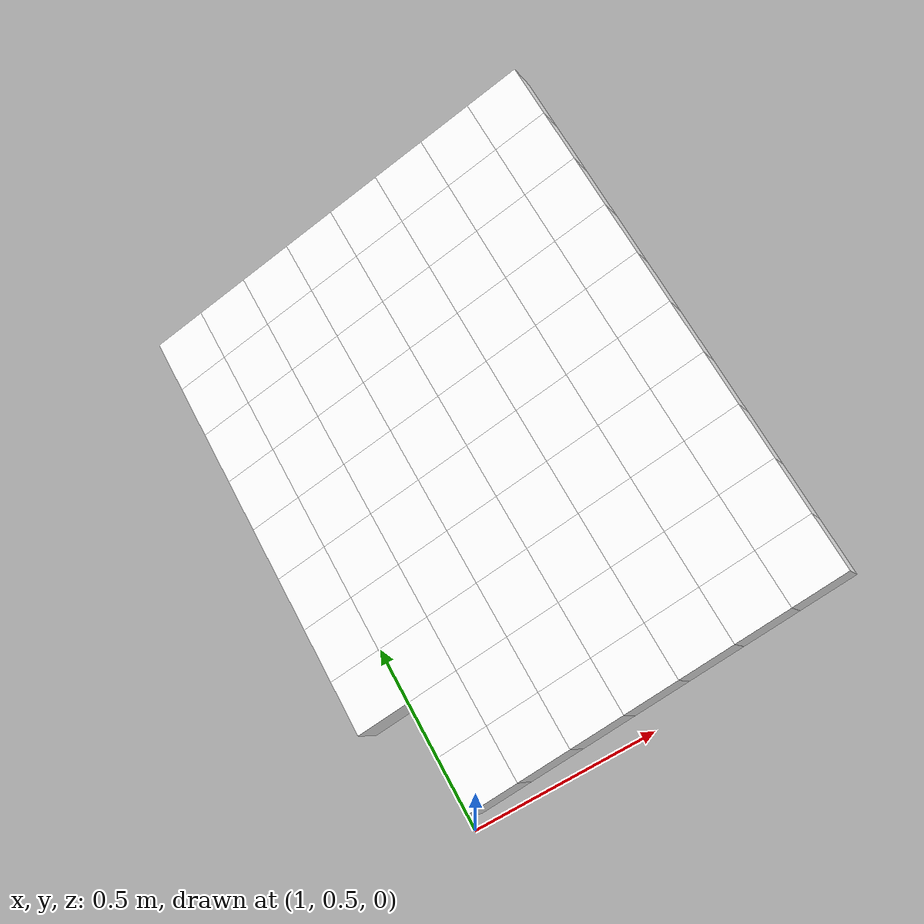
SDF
<sdf version="1.7">
 <world name="default">
  <include><uri>model://sun</uri></include>
  <model name="static_environment">
   <static>true</static>
   <link name="region_401">
    <pose>1.0762143930059413 0.6 0.09778168674698906 0.0 -0.45 0.0</pose>
    <collision name="region_401_collision">
     <geometry><box><size>0.15 0.15 0.1</size></box></geometry>
     <surface><friction><ode><mu>1.0</mu><mu2>1.0</mu2></ode></friction></surface>
    </collision>
    <visual name="region_401_visual">
     <geometry><box><size>0.15 0.15 0.1</size></box></geometry>
     <material><ambient>1.0 1.0 1.0 1.0</ambient><diffuse>1.0 1.0 1.0 1.0</diffuse></material>
    </visual>
   </link>
   <link name="region_402">
    <pose>1.211281458358843 0.6 0.16302651686367364 0.0 -0.45 0.0</pose>
    <collision name="region_402_collision">
     <geometry><box><size>0.15 0.15 0.1</size></box></geometry>
     <surface><friction><ode><mu>1.0</mu><mu2>1.0</mu2></ode></friction></surface>
    </collision>
    <visual name="region_402_visual">
     <geometry><box><size>0.15 0.15 0.1</size></box></geometry>
     <material><ambient>1.0 1.0 1.0 1.0</ambient><diffuse>1.0 1.0 1.0 1.0</diffuse></material>
    </visual>
   </link>
   <link name="region_403">
    <pose>1.346348523711744 0.6 0.228271346980358 0.0 -0.45 0.0</pose>
    <collision name="region_403_collision">
     <geometry><box><size>0.15 0.15 0.1</size></box></geometry>
     <surface><friction><ode><mu>1.0</mu><mu2>1.0</mu2></ode></friction></surface>
    </collision>
    <visual name="region_403_visual">
     <geometry><box><size>0.15 0.15 0.1</size></box></geometry>
     <material><ambient>1.0 1.0 1.0 1.0</ambient><diffuse>1.0 1.0 1.0 1.0</diffuse></material>
    </visual>
   </link>
   <link name="region_404">
    <pose>1.4814155890646457 0.6 0.2935161770970426 0.0 -0.45 0.0</pose>
    <collision name="region_404_collision">
     <geometry><box><size>0.15 0.15 0.1</size></box></geometry>
     <surface><friction><ode><mu>1.0</mu><mu2>1.0</mu2></ode></friction></surface>
    </collision>
    <visual name="region_404_visual">
     <geometry><box><size>0.15 0.15 0.1</size></box></geometry>
     <material><ambient>1.0 1.0 1.0 1.0</ambient><diffuse>1.0 1.0 1.0 1.0</diffuse></material>
    </visual>
   </link>
   <link name="region_405">
    <pose>1.6164826544175472 0.6 0.35876100721372695 0.0 -0.45 0.0</pose>
    <collision name="region_405_collision">
     <geometry><box><size>0.15 0.15 0.1</size></box></geometry>
     <surface><friction><ode><mu>1.0</mu><mu2>1.0</mu2></ode></friction></surface>
    </collision>
    <visual name="region_405_visual">
     <geometry><box><size>0.15 0.15 0.1</size></box></geometry>
     <material><ambient>1.0 1.0 1.0 1.0</ambient><diffuse>1.0 1.0 1.0 1.0</diffuse></material>
    </visual>
   </link>
   <link name="region_406">
    <pose>1.7515497197704484 0.6 0.42400583733041153 0.0 -0.45 0.0</pose>
    <collision name="region_406_collision">
     <geometry><box><size>0.15 0.15 0.1</size></box></geometry>
     <surface><friction><ode><mu>1.0</mu><mu2>1.0</mu2></ode></friction></surface>
    </collision>
    <visual name="region_406_visual">
     <geometry><box><size>0.15 0.15 0.1</size></box></geometry>
     <material><ambient>1.0 1.0 1.0 1.0</ambient><diffuse>1.0 1.0 1.0 1.0</diffuse></material>
    </visual>
   </link>
   <link name="region_407">
    <pose>1.88661678512335 0.6 0.4892506674470961 0.0 -0.45 0.0</pose>
    <collision name="region_407_collision">
     <geometry><box><size>0.15 0.15 0.1</size></box></geometry>
     <surface><friction><ode><mu>1.0</mu><mu2>1.0</mu2></ode></friction></surface>
    </collision>
    <visual name="region_407_visual">
     <geometry><box><size>0.15 0.15 0.1</size></box></geometry>
     <material><ambient>1.0 1.0 1.0 1.0</ambient><diffuse>1.0 1.0 1.0 1.0</diffuse></material>
    </visual>
   </link>
   <link name="region_421">
    <pose>1.0762143930059413 0.75 0.09778168674698906 0.0 -0.45 0.0</pose>
    <collision name="region_421_collision">
     <geometry><box><size>0.15 0.15 0.1</size></box></geometry>
     <surface><friction><ode><mu>1.0</mu><mu2>1.0</mu2></ode></friction></surface>
    </collision>
    <visual name="region_421_visual">
     <geometry><box><size>0.15 0.15 0.1</size></box></geometry>
     <material><ambient>1.0 1.0 1.0 1.0</ambient><diffuse>1.0 1.0 1.0 1.0</diffuse></material>
    </visual>
   </link>
   <link name="region_422">
    <pose>1.211281458358843 0.75 0.16302651686367364 0.0 -0.45 0.0</pose>
    <collision name="region_422_collision">
     <geometry><box><size>0.15 0.15 0.1</size></box></geometry>
     <surface><friction><ode><mu>1.0</mu><mu2>1.0</mu2></ode></friction></surface>
    </collision>
    <visual name="region_422_visual">
     <geometry><box><size>0.15 0.15 0.1</size></box></geometry>
     <material><ambient>1.0 1.0 1.0 1.0</ambient><diffuse>1.0 1.0 1.0 1.0</diffuse></material>
    </visual>
   </link>
   <link name="region_423">
    <pose>1.346348523711744 0.75 0.228271346980358 0.0 -0.45 0.0</pose>
    <collision name="region_423_collision">
     <geometry><box><size>0.15 0.15 0.1</size></box></geometry>
     <surface><friction><ode><mu>1.0</mu><mu2>1.0</mu2></ode></friction></surface>
    </collision>
    <visual name="region_423_visual">
     <geometry><box><size>0.15 0.15 0.1</size></box></geometry>
     <material><ambient>1.0 1.0 1.0 1.0</ambient><diffuse>1.0 1.0 1.0 1.0</diffuse></material>
    </visual>
   </link>
   <link name="region_424">
    <pose>1.4814155890646457 0.75 0.2935161770970426 0.0 -0.45 0.0</pose>
    <collision name="region_424_collision">
     <geometry><box><size>0.15 0.15 0.1</size></box></geometry>
     <surface><friction><ode><mu>1.0</mu><mu2>1.0</mu2></ode></friction></surface>
    </collision>
    <visual name="region_424_visual">
     <geometry><box><size>0.15 0.15 0.1</size></box></geometry>
     <material><ambient>1.0 1.0 1.0 1.0</ambient><diffuse>1.0 1.0 1.0 1.0</diffuse></material>
    </visual>
   </link>
   <link name="region_425">
    <pose>1.6164826544175472 0.75 0.35876100721372695 0.0 -0.45 0.0</pose>
    <collision name="region_425_collision">
     <geometry><box><size>0.15 0.15 0.1</size></box></geometry>
     <surface><friction><ode><mu>1.0</mu><mu2>1.0</mu2></ode></friction></surface>
    </collision>
    <visual name="region_425_visual">
     <geometry><box><size>0.15 0.15 0.1</size></box></geometry>
     <material><ambient>1.0 1.0 1.0 1.0</ambient><diffuse>1.0 1.0 1.0 1.0</diffuse></material>
    </visual>
   </link>
   <link name="region_426">
    <pose>1.7515497197704484 0.75 0.42400583733041153 0.0 -0.45 0.0</pose>
    <collision name="region_426_collision">
     <geometry><box><size>0.15 0.15 0.1</size></box></geometry>
     <surface><friction><ode><mu>1.0</mu><mu2>1.0</mu2></ode></friction></surface>
    </collision>
    <visual name="region_426_visual">
     <geometry><box><size>0.15 0.15 0.1</size></box></geometry>
     <material><ambient>1.0 1.0 1.0 1.0</ambient><diffuse>1.0 1.0 1.0 1.0</diffuse></material>
    </visual>
   </link>
   <link name="region_427">
    <pose>1.88661678512335 0.75 0.4892506674470961 0.0 -0.45 0.0</pose>
    <collision name="region_427_collision">
     <geometry><box><size>0.15 0.15 0.1</size></box></geometry>
     <surface><friction><ode><mu>1.0</mu><mu2>1.0</mu2></ode></friction></surface>
    </collision>
    <visual name="region_427_visual">
     <geometry><box><size>0.15 0.15 0.1</size></box></geometry>
     <material><ambient>1.0 1.0 1.0 1.0</ambient><diffuse>1.0 1.0 1.0 1.0</diffuse></material>
    </visual>
   </link>
   <link name="region_440">
    <pose>0.9411473276530398 0.8999999999999999 0.03253685663030448 0.0 -0.45 0.0</pose>
    <collision name="region_440_collision">
     <geometry><box><size>0.15 0.15 0.1</size></box></geometry>
     <surface><friction><ode><mu>1.0</mu><mu2>1.0</mu2></ode></friction></surface>
    </collision>
    <visual name="region_440_visual">
     <geometry><box><size>0.15 0.15 0.1</size></box></geometry>
     <material><ambient>1.0 1.0 1.0 1.0</ambient><diffuse>1.0 1.0 1.0 1.0</diffuse></material>
    </visual>
   </link>
   <link name="region_441">
    <pose>1.0762143930059413 0.8999999999999999 0.09778168674698906 0.0 -0.45 0.0</pose>
    <collision name="region_441_collision">
     <geometry><box><size>0.15 0.15 0.1</size></box></geometry>
     <surface><friction><ode><mu>1.0</mu><mu2>1.0</mu2></ode></friction></surface>
    </collision>
    <visual name="region_441_visual">
     <geometry><box><size>0.15 0.15 0.1</size></box></geometry>
     <material><ambient>1.0 1.0 1.0 1.0</ambient><diffuse>1.0 1.0 1.0 1.0</diffuse></material>
    </visual>
   </link>
   <link name="region_442">
    <pose>1.211281458358843 0.8999999999999999 0.16302651686367364 0.0 -0.45 0.0</pose>
    <collision name="region_442_collision">
     <geometry><box><size>0.15 0.15 0.1</size></box></geometry>
     <surface><friction><ode><mu>1.0</mu><mu2>1.0</mu2></ode></friction></surface>
    </collision>
    <visual name="region_442_visual">
     <geometry><box><size>0.15 0.15 0.1</size></box></geometry>
     <material><ambient>1.0 1.0 1.0 1.0</ambient><diffuse>1.0 1.0 1.0 1.0</diffuse></material>
    </visual>
   </link>
   <link name="region_443">
    <pose>1.346348523711744 0.8999999999999999 0.228271346980358 0.0 -0.45 0.0</pose>
    <collision name="region_443_collision">
     <geometry><box><size>0.15 0.15 0.1</size></box></geometry>
     <surface><friction><ode><mu>1.0</mu><mu2>1.0</mu2></ode></friction></surface>
    </collision>
    <visual name="region_443_visual">
     <geometry><box><size>0.15 0.15 0.1</size></box></geometry>
     <material><ambient>1.0 1.0 1.0 1.0</ambient><diffuse>1.0 1.0 1.0 1.0</diffuse></material>
    </visual>
   </link>
   <link name="region_444">
    <pose>1.4814155890646457 0.8999999999999999 0.2935161770970426 0.0 -0.45 0.0</pose>
    <collision name="region_444_collision">
     <geometry><box><size>0.15 0.15 0.1</size></box></geometry>
     <surface><friction><ode><mu>1.0</mu><mu2>1.0</mu2></ode></friction></surface>
    </collision>
    <visual name="region_444_visual">
     <geometry><box><size>0.15 0.15 0.1</size></box></geometry>
     <material><ambient>1.0 1.0 1.0 1.0</ambient><diffuse>1.0 1.0 1.0 1.0</diffuse></material>
    </visual>
   </link>
   <link name="region_445">
    <pose>1.6164826544175472 0.8999999999999999 0.35876100721372695 0.0 -0.45 0.0</pose>
    <collision name="region_445_collision">
     <geometry><box><size>0.15 0.15 0.1</size></box></geometry>
     <surface><friction><ode><mu>1.0</mu><mu2>1.0</mu2></ode></friction></surface>
    </collision>
    <visual name="region_445_visual">
     <geometry><box><size>0.15 0.15 0.1</size></box></geometry>
     <material><ambient>1.0 1.0 1.0 1.0</ambient><diffuse>1.0 1.0 1.0 1.0</diffuse></material>
    </visual>
   </link>
   <link name="region_446">
    <pose>1.7515497197704484 0.8999999999999999 0.42400583733041153 0.0 -0.45 0.0</pose>
    <collision name="region_446_collision">
     <geometry><box><size>0.15 0.15 0.1</size></box></geometry>
     <surface><friction><ode><mu>1.0</mu><mu2>1.0</mu2></ode></friction></surface>
    </collision>
    <visual name="region_446_visual">
     <geometry><box><size>0.15 0.15 0.1</size></box></geometry>
     <material><ambient>1.0 1.0 1.0 1.0</ambient><diffuse>1.0 1.0 1.0 1.0</diffuse></material>
    </visual>
   </link>
   <link name="region_447">
    <pose>1.88661678512335 0.8999999999999999 0.4892506674470961 0.0 -0.45 0.0</pose>
    <collision name="region_447_collision">
     <geometry><box><size>0.15 0.15 0.1</size></box></geometry>
     <surface><friction><ode><mu>1.0</mu><mu2>1.0</mu2></ode></friction></surface>
    </collision>
    <visual name="region_447_visual">
     <geometry><box><size>0.15 0.15 0.1</size></box></geometry>
     <material><ambient>1.0 1.0 1.0 1.0</ambient><diffuse>1.0 1.0 1.0 1.0</diffuse></material>
    </visual>
   </link>
   <link name="region_460">
    <pose>0.9411473276530398 1.0499999999999998 0.03253685663030448 0.0 -0.45 0.0</pose>
    <collision name="region_460_collision">
     <geometry><box><size>0.15 0.15 0.1</size></box></geometry>
     <surface><friction><ode><mu>1.0</mu><mu2>1.0</mu2></ode></friction></surface>
    </collision>
    <visual name="region_460_visual">
     <geometry><box><size>0.15 0.15 0.1</size></box></geometry>
     <material><ambient>1.0 1.0 1.0 1.0</ambient><diffuse>1.0 1.0 1.0 1.0</diffuse></material>
    </visual>
   </link>
   <link name="region_461">
    <pose>1.0762143930059413 1.0499999999999998 0.09778168674698906 0.0 -0.45 0.0</pose>
    <collision name="region_461_collision">
     <geometry><box><size>0.15 0.15 0.1</size></box></geometry>
     <surface><friction><ode><mu>1.0</mu><mu2>1.0</mu2></ode></friction></surface>
    </collision>
    <visual name="region_461_visual">
     <geometry><box><size>0.15 0.15 0.1</size></box></geometry>
     <material><ambient>1.0 1.0 1.0 1.0</ambient><diffuse>1.0 1.0 1.0 1.0</diffuse></material>
    </visual>
   </link>
   <link name="region_462">
    <pose>1.211281458358843 1.0499999999999998 0.16302651686367364 0.0 -0.45 0.0</pose>
    <collision name="region_462_collision">
     <geometry><box><size>0.15 0.15 0.1</size></box></geometry>
     <surface><friction><ode><mu>1.0</mu><mu2>1.0</mu2></ode></friction></surface>
    </collision>
    <visual name="region_462_visual">
     <geometry><box><size>0.15 0.15 0.1</size></box></geometry>
     <material><ambient>1.0 1.0 1.0 1.0</ambient><diffuse>1.0 1.0 1.0 1.0</diffuse></material>
    </visual>
   </link>
   <link name="region_463">
    <pose>1.346348523711744 1.0499999999999998 0.228271346980358 0.0 -0.45 0.0</pose>
    <collision name="region_463_collision">
     <geometry><box><size>0.15 0.15 0.1</size></box></geometry>
     <surface><friction><ode><mu>1.0</mu><mu2>1.0</mu2></ode></friction></surface>
    </collision>
    <visual name="region_463_visual">
     <geometry><box><size>0.15 0.15 0.1</size></box></geometry>
     <material><ambient>1.0 1.0 1.0 1.0</ambient><diffuse>1.0 1.0 1.0 1.0</diffuse></material>
    </visual>
   </link>
   <link name="region_464">
    <pose>1.4814155890646457 1.0499999999999998 0.2935161770970426 0.0 -0.45 0.0</pose>
    <collision name="region_464_collision">
     <geometry><box><size>0.15 0.15 0.1</size></box></geometry>
     <surface><friction><ode><mu>1.0</mu><mu2>1.0</mu2></ode></friction></surface>
    </collision>
    <visual name="region_464_visual">
     <geometry><box><size>0.15 0.15 0.1</size></box></geometry>
     <material><ambient>1.0 1.0 1.0 1.0</ambient><diffuse>1.0 1.0 1.0 1.0</diffuse></material>
    </visual>
   </link>
   <link name="region_465">
    <pose>1.6164826544175472 1.0499999999999998 0.35876100721372695 0.0 -0.45 0.0</pose>
    <collision name="region_465_collision">
     <geometry><box><size>0.15 0.15 0.1</size></box></geometry>
     <surface><friction><ode><mu>1.0</mu><mu2>1.0</mu2></ode></friction></surface>
    </collision>
    <visual name="region_465_visual">
     <geometry><box><size>0.15 0.15 0.1</size></box></geometry>
     <material><ambient>1.0 1.0 1.0 1.0</ambient><diffuse>1.0 1.0 1.0 1.0</diffuse></material>
    </visual>
   </link>
   <link name="region_466">
    <pose>1.7515497197704484 1.0499999999999998 0.42400583733041153 0.0 -0.45 0.0</pose>
    <collision name="region_466_collision">
     <geometry><box><size>0.15 0.15 0.1</size></box></geometry>
     <surface><friction><ode><mu>1.0</mu><mu2>1.0</mu2></ode></friction></surface>
    </collision>
    <visual name="region_466_visual">
     <geometry><box><size>0.15 0.15 0.1</size></box></geometry>
     <material><ambient>1.0 1.0 1.0 1.0</ambient><diffuse>1.0 1.0 1.0 1.0</diffuse></material>
    </visual>
   </link>
   <link name="region_467">
    <pose>1.88661678512335 1.0499999999999998 0.4892506674470961 0.0 -0.45 0.0</pose>
    <collision name="region_467_collision">
     <geometry><box><size>0.15 0.15 0.1</size></box></geometry>
     <surface><friction><ode><mu>1.0</mu><mu2>1.0</mu2></ode></friction></surface>
    </collision>
    <visual name="region_467_visual">
     <geometry><box><size>0.15 0.15 0.1</size></box></geometry>
     <material><ambient>1.0 1.0 1.0 1.0</ambient><diffuse>1.0 1.0 1.0 1.0</diffuse></material>
    </visual>
   </link>
   <link name="region_480">
    <pose>0.9411473276530398 1.2 0.03253685663030448 0.0 -0.45 0.0</pose>
    <collision name="region_480_collision">
     <geometry><box><size>0.15 0.15 0.1</size></box></geometry>
     <surface><friction><ode><mu>1.0</mu><mu2>1.0</mu2></ode></friction></surface>
    </collision>
    <visual name="region_480_visual">
     <geometry><box><size>0.15 0.15 0.1</size></box></geometry>
     <material><ambient>1.0 1.0 1.0 1.0</ambient><diffuse>1.0 1.0 1.0 1.0</diffuse></material>
    </visual>
   </link>
   <link name="region_481">
    <pose>1.0762143930059413 1.2 0.09778168674698906 0.0 -0.45 0.0</pose>
    <collision name="region_481_collision">
     <geometry><box><size>0.15 0.15 0.1</size></box></geometry>
     <surface><friction><ode><mu>1.0</mu><mu2>1.0</mu2></ode></friction></surface>
    </collision>
    <visual name="region_481_visual">
     <geometry><box><size>0.15 0.15 0.1</size></box></geometry>
     <material><ambient>1.0 1.0 1.0 1.0</ambient><diffuse>1.0 1.0 1.0 1.0</diffuse></material>
    </visual>
   </link>
   <link name="region_482">
    <pose>1.211281458358843 1.2 0.16302651686367364 0.0 -0.45 0.0</pose>
    <collision name="region_482_collision">
     <geometry><box><size>0.15 0.15 0.1</size></box></geometry>
     <surface><friction><ode><mu>1.0</mu><mu2>1.0</mu2></ode></friction></surface>
    </collision>
    <visual name="region_482_visual">
     <geometry><box><size>0.15 0.15 0.1</size></box></geometry>
     <material><ambient>1.0 1.0 1.0 1.0</ambient><diffuse>1.0 1.0 1.0 1.0</diffuse></material>
    </visual>
   </link>
   <link name="region_483">
    <pose>1.346348523711744 1.2 0.228271346980358 0.0 -0.45 0.0</pose>
    <collision name="region_483_collision">
     <geometry><box><size>0.15 0.15 0.1</size></box></geometry>
     <surface><friction><ode><mu>1.0</mu><mu2>1.0</mu2></ode></friction></surface>
    </collision>
    <visual name="region_483_visual">
     <geometry><box><size>0.15 0.15 0.1</size></box></geometry>
     <material><ambient>1.0 1.0 1.0 1.0</ambient><diffuse>1.0 1.0 1.0 1.0</diffuse></material>
    </visual>
   </link>
   <link name="region_484">
    <pose>1.4814155890646457 1.2 0.2935161770970426 0.0 -0.45 0.0</pose>
    <collision name="region_484_collision">
     <geometry><box><size>0.15 0.15 0.1</size></box></geometry>
     <surface><friction><ode><mu>1.0</mu><mu2>1.0</mu2></ode></friction></surface>
    </collision>
    <visual name="region_484_visual">
     <geometry><box><size>0.15 0.15 0.1</size></box></geometry>
     <material><ambient>1.0 1.0 1.0 1.0</ambient><diffuse>1.0 1.0 1.0 1.0</diffuse></material>
    </visual>
   </link>
   <link name="region_485">
    <pose>1.6164826544175472 1.2 0.35876100721372695 0.0 -0.45 0.0</pose>
    <collision name="region_485_collision">
     <geometry><box><size>0.15 0.15 0.1</size></box></geometry>
     <surface><friction><ode><mu>1.0</mu><mu2>1.0</mu2></ode></friction></surface>
    </collision>
    <visual name="region_485_visual">
     <geometry><box><size>0.15 0.15 0.1</size></box></geometry>
     <material><ambient>1.0 1.0 1.0 1.0</ambient><diffuse>1.0 1.0 1.0 1.0</diffuse></material>
    </visual>
   </link>
   <link name="region_486">
    <pose>1.7515497197704484 1.2 0.42400583733041153 0.0 -0.45 0.0</pose>
    <collision name="region_486_collision">
     <geometry><box><size>0.15 0.15 0.1</size></box></geometry>
     <surface><friction><ode><mu>1.0</mu><mu2>1.0</mu2></ode></friction></surface>
    </collision>
    <visual name="region_486_visual">
     <geometry><box><size>0.15 0.15 0.1</size></box></geometry>
     <material><ambient>1.0 1.0 1.0 1.0</ambient><diffuse>1.0 1.0 1.0 1.0</diffuse></material>
    </visual>
   </link>
   <link name="region_487">
    <pose>1.88661678512335 1.2 0.4892506674470961 0.0 -0.45 0.0</pose>
    <collision name="region_487_collision">
     <geometry><box><size>0.15 0.15 0.1</size></box></geometry>
     <surface><friction><ode><mu>1.0</mu><mu2>1.0</mu2></ode></friction></surface>
    </collision>
    <visual name="region_487_visual">
     <geometry><box><size>0.15 0.15 0.1</size></box></geometry>
     <material><ambient>1.0 1.0 1.0 1.0</ambient><diffuse>1.0 1.0 1.0 1.0</diffuse></material>
    </visual>
   </link>
   <link name="region_500">
    <pose>0.9411473276530398 1.35 0.03253685663030448 0.0 -0.45 0.0</pose>
    <collision name="region_500_collision">
     <geometry><box><size>0.15 0.15 0.1</size></box></geometry>
     <surface><friction><ode><mu>1.0</mu><mu2>1.0</mu2></ode></friction></surface>
    </collision>
    <visual name="region_500_visual">
     <geometry><box><size>0.15 0.15 0.1</size></box></geometry>
     <material><ambient>1.0 1.0 1.0 1.0</ambient><diffuse>1.0 1.0 1.0 1.0</diffuse></material>
    </visual>
   </link>
   <link name="region_501">
    <pose>1.0762143930059413 1.35 0.09778168674698906 0.0 -0.45 0.0</pose>
    <collision name="region_501_collision">
     <geometry><box><size>0.15 0.15 0.1</size></box></geometry>
     <surface><friction><ode><mu>1.0</mu><mu2>1.0</mu2></ode></friction></surface>
    </collision>
    <visual name="region_501_visual">
     <geometry><box><size>0.15 0.15 0.1</size></box></geometry>
     <material><ambient>1.0 1.0 1.0 1.0</ambient><diffuse>1.0 1.0 1.0 1.0</diffuse></material>
    </visual>
   </link>
   <link name="region_502">
    <pose>1.211281458358843 1.35 0.16302651686367364 0.0 -0.45 0.0</pose>
    <collision name="region_502_collision">
     <geometry><box><size>0.15 0.15 0.1</size></box></geometry>
     <surface><friction><ode><mu>1.0</mu><mu2>1.0</mu2></ode></friction></surface>
    </collision>
    <visual name="region_502_visual">
     <geometry><box><size>0.15 0.15 0.1</size></box></geometry>
     <material><ambient>1.0 1.0 1.0 1.0</ambient><diffuse>1.0 1.0 1.0 1.0</diffuse></material>
    </visual>
   </link>
   <link name="region_503">
    <pose>1.346348523711744 1.35 0.228271346980358 0.0 -0.45 0.0</pose>
    <collision name="region_503_collision">
     <geometry><box><size>0.15 0.15 0.1</size></box></geometry>
     <surface><friction><ode><mu>1.0</mu><mu2>1.0</mu2></ode></friction></surface>
    </collision>
    <visual name="region_503_visual">
     <geometry><box><size>0.15 0.15 0.1</size></box></geometry>
     <material><ambient>1.0 1.0 1.0 1.0</ambient><diffuse>1.0 1.0 1.0 1.0</diffuse></material>
    </visual>
   </link>
   <link name="region_504">
    <pose>1.4814155890646457 1.35 0.2935161770970426 0.0 -0.45 0.0</pose>
    <collision name="region_504_collision">
     <geometry><box><size>0.15 0.15 0.1</size></box></geometry>
     <surface><friction><ode><mu>1.0</mu><mu2>1.0</mu2></ode></friction></surface>
    </collision>
    <visual name="region_504_visual">
     <geometry><box><size>0.15 0.15 0.1</size></box></geometry>
     <material><ambient>1.0 1.0 1.0 1.0</ambient><diffuse>1.0 1.0 1.0 1.0</diffuse></material>
    </visual>
   </link>
   <link name="region_505">
    <pose>1.6164826544175472 1.35 0.35876100721372695 0.0 -0.45 0.0</pose>
    <collision name="region_505_collision">
     <geometry><box><size>0.15 0.15 0.1</size></box></geometry>
     <surface><friction><ode><mu>1.0</mu><mu2>1.0</mu2></ode></friction></surface>
    </collision>
    <visual name="region_505_visual">
     <geometry><box><size>0.15 0.15 0.1</size></box></geometry>
     <material><ambient>1.0 1.0 1.0 1.0</ambient><diffuse>1.0 1.0 1.0 1.0</diffuse></material>
    </visual>
   </link>
   <link name="region_506">
    <pose>1.7515497197704484 1.35 0.42400583733041153 0.0 -0.45 0.0</pose>
    <collision name="region_506_collision">
     <geometry><box><size>0.15 0.15 0.1</size></box></geometry>
     <surface><friction><ode><mu>1.0</mu><mu2>1.0</mu2></ode></friction></surface>
    </collision>
    <visual name="region_506_visual">
     <geometry><box><size>0.15 0.15 0.1</size></box></geometry>
     <material><ambient>1.0 1.0 1.0 1.0</ambient><diffuse>1.0 1.0 1.0 1.0</diffuse></material>
    </visual>
   </link>
   <link name="region_507">
    <pose>1.88661678512335 1.35 0.4892506674470961 0.0 -0.45 0.0</pose>
    <collision name="region_507_collision">
     <geometry><box><size>0.15 0.15 0.1</size></box></geometry>
     <surface><friction><ode><mu>1.0</mu><mu2>1.0</mu2></ode></friction></surface>
    </collision>
    <visual name="region_507_visual">
     <geometry><box><size>0.15 0.15 0.1</size></box></geometry>
     <material><ambient>1.0 1.0 1.0 1.0</ambient><diffuse>1.0 1.0 1.0 1.0</diffuse></material>
    </visual>
   </link>
   <link name="region_520">
    <pose>0.9411473276530398 1.5 0.03253685663030448 0.0 -0.45 0.0</pose>
    <collision name="region_520_collision">
     <geometry><box><size>0.15 0.15 0.1</size></box></geometry>
     <surface><friction><ode><mu>1.0</mu><mu2>1.0</mu2></ode></friction></surface>
    </collision>
    <visual name="region_520_visual">
     <geometry><box><size>0.15 0.15 0.1</size></box></geometry>
     <material><ambient>1.0 1.0 1.0 1.0</ambient><diffuse>1.0 1.0 1.0 1.0</diffuse></material>
    </visual>
   </link>
   <link name="region_521">
    <pose>1.0762143930059413 1.5 0.09778168674698906 0.0 -0.45 0.0</pose>
    <collision name="region_521_collision">
     <geometry><box><size>0.15 0.15 0.1</size></box></geometry>
     <surface><friction><ode><mu>1.0</mu><mu2>1.0</mu2></ode></friction></surface>
    </collision>
    <visual name="region_521_visual">
     <geometry><box><size>0.15 0.15 0.1</size></box></geometry>
     <material><ambient>1.0 1.0 1.0 1.0</ambient><diffuse>1.0 1.0 1.0 1.0</diffuse></material>
    </visual>
   </link>
   <link name="region_522">
    <pose>1.211281458358843 1.5 0.16302651686367364 0.0 -0.45 0.0</pose>
    <collision name="region_522_collision">
     <geometry><box><size>0.15 0.15 0.1</size></box></geometry>
     <surface><friction><ode><mu>1.0</mu><mu2>1.0</mu2></ode></friction></surface>
    </collision>
    <visual name="region_522_visual">
     <geometry><box><size>0.15 0.15 0.1</size></box></geometry>
     <material><ambient>1.0 1.0 1.0 1.0</ambient><diffuse>1.0 1.0 1.0 1.0</diffuse></material>
    </visual>
   </link>
   <link name="region_523">
    <pose>1.346348523711744 1.5 0.228271346980358 0.0 -0.45 0.0</pose>
    <collision name="region_523_collision">
     <geometry><box><size>0.15 0.15 0.1</size></box></geometry>
     <surface><friction><ode><mu>1.0</mu><mu2>1.0</mu2></ode></friction></surface>
    </collision>
    <visual name="region_523_visual">
     <geometry><box><size>0.15 0.15 0.1</size></box></geometry>
     <material><ambient>1.0 1.0 1.0 1.0</ambient><diffuse>1.0 1.0 1.0 1.0</diffuse></material>
    </visual>
   </link>
   <link name="region_524">
    <pose>1.4814155890646457 1.5 0.2935161770970426 0.0 -0.45 0.0</pose>
    <collision name="region_524_collision">
     <geometry><box><size>0.15 0.15 0.1</size></box></geometry>
     <surface><friction><ode><mu>1.0</mu><mu2>1.0</mu2></ode></friction></surface>
    </collision>
    <visual name="region_524_visual">
     <geometry><box><size>0.15 0.15 0.1</size></box></geometry>
     <material><ambient>1.0 1.0 1.0 1.0</ambient><diffuse>1.0 1.0 1.0 1.0</diffuse></material>
    </visual>
   </link>
   <link name="region_525">
    <pose>1.6164826544175472 1.5 0.35876100721372695 0.0 -0.45 0.0</pose>
    <collision name="region_525_collision">
     <geometry><box><size>0.15 0.15 0.1</size></box></geometry>
     <surface><friction><ode><mu>1.0</mu><mu2>1.0</mu2></ode></friction></surface>
    </collision>
    <visual name="region_525_visual">
     <geometry><box><size>0.15 0.15 0.1</size></box></geometry>
     <material><ambient>1.0 1.0 1.0 1.0</ambient><diffuse>1.0 1.0 1.0 1.0</diffuse></material>
    </visual>
   </link>
   <link name="region_526">
    <pose>1.7515497197704484 1.5 0.42400583733041153 0.0 -0.45 0.0</pose>
    <collision name="region_526_collision">
     <geometry><box><size>0.15 0.15 0.1</size></box></geometry>
     <surface><friction><ode><mu>1.0</mu><mu2>1.0</mu2></ode></friction></surface>
    </collision>
    <visual name="region_526_visual">
     <geometry><box><size>0.15 0.15 0.1</size></box></geometry>
     <material><ambient>1.0 1.0 1.0 1.0</ambient><diffuse>1.0 1.0 1.0 1.0</diffuse></material>
    </visual>
   </link>
   <link name="region_527">
    <pose>1.88661678512335 1.5 0.4892506674470961 0.0 -0.45 0.0</pose>
    <collision name="region_527_collision">
     <geometry><box><size>0.15 0.15 0.1</size></box></geometry>
     <surface><friction><ode><mu>1.0</mu><mu2>1.0</mu2></ode></friction></surface>
    </collision>
    <visual name="region_527_visual">
     <geometry><box><size>0.15 0.15 0.1</size></box></geometry>
     <material><ambient>1.0 1.0 1.0 1.0</ambient><diffuse>1.0 1.0 1.0 1.0</diffuse></material>
    </visual>
   </link>
   <link name="region_540">
    <pose>0.9411473276530398 1.65 0.03253685663030448 0.0 -0.45 0.0</pose>
    <collision name="region_540_collision">
     <geometry><box><size>0.15 0.15 0.1</size></box></geometry>
     <surface><friction><ode><mu>1.0</mu><mu2>1.0</mu2></ode></friction></surface>
    </collision>
    <visual name="region_540_visual">
     <geometry><box><size>0.15 0.15 0.1</size></box></geometry>
     <material><ambient>1.0 1.0 1.0 1.0</ambient><diffuse>1.0 1.0 1.0 1.0</diffuse></material>
    </visual>
   </link>
   <link name="region_541">
    <pose>1.0762143930059413 1.65 0.09778168674698906 0.0 -0.45 0.0</pose>
    <collision name="region_541_collision">
     <geometry><box><size>0.15 0.15 0.1</size></box></geometry>
     <surface><friction><ode><mu>1.0</mu><mu2>1.0</mu2></ode></friction></surface>
    </collision>
    <visual name="region_541_visual">
     <geometry><box><size>0.15 0.15 0.1</size></box></geometry>
     <material><ambient>1.0 1.0 1.0 1.0</ambient><diffuse>1.0 1.0 1.0 1.0</diffuse></material>
    </visual>
   </link>
   <link name="region_542">
    <pose>1.211281458358843 1.65 0.16302651686367364 0.0 -0.45 0.0</pose>
    <collision name="region_542_collision">
     <geometry><box><size>0.15 0.15 0.1</size></box></geometry>
     <surface><friction><ode><mu>1.0</mu><mu2>1.0</mu2></ode></friction></surface>
    </collision>
    <visual name="region_542_visual">
     <geometry><box><size>0.15 0.15 0.1</size></box></geometry>
     <material><ambient>1.0 1.0 1.0 1.0</ambient><diffuse>1.0 1.0 1.0 1.0</diffuse></material>
    </visual>
   </link>
   <link name="region_543">
    <pose>1.346348523711744 1.65 0.228271346980358 0.0 -0.45 0.0</pose>
    <collision name="region_543_collision">
     <geometry><box><size>0.15 0.15 0.1</size></box></geometry>
     <surface><friction><ode><mu>1.0</mu><mu2>1.0</mu2></ode></friction></surface>
    </collision>
    <visual name="region_543_visual">
     <geometry><box><size>0.15 0.15 0.1</size></box></geometry>
     <material><ambient>1.0 1.0 1.0 1.0</ambient><diffuse>1.0 1.0 1.0 1.0</diffuse></material>
    </visual>
   </link>
   <link name="region_544">
    <pose>1.4814155890646457 1.65 0.2935161770970426 0.0 -0.45 0.0</pose>
    <collision name="region_544_collision">
     <geometry><box><size>0.15 0.15 0.1</size></box></geometry>
     <surface><friction><ode><mu>1.0</mu><mu2>1.0</mu2></ode></friction></surface>
    </collision>
    <visual name="region_544_visual">
     <geometry><box><size>0.15 0.15 0.1</size></box></geometry>
     <material><ambient>1.0 1.0 1.0 1.0</ambient><diffuse>1.0 1.0 1.0 1.0</diffuse></material>
    </visual>
   </link>
   <link name="region_545">
    <pose>1.6164826544175472 1.65 0.35876100721372695 0.0 -0.45 0.0</pose>
    <collision name="region_545_collision">
     <geometry><box><size>0.15 0.15 0.1</size></box></geometry>
     <surface><friction><ode><mu>1.0</mu><mu2>1.0</mu2></ode></friction></surface>
    </collision>
    <visual name="region_545_visual">
     <geometry><box><size>0.15 0.15 0.1</size></box></geometry>
     <material><ambient>1.0 1.0 1.0 1.0</ambient><diffuse>1.0 1.0 1.0 1.0</diffuse></material>
    </visual>
   </link>
   <link name="region_546">
    <pose>1.7515497197704484 1.65 0.42400583733041153 0.0 -0.45 0.0</pose>
    <collision name="region_546_collision">
     <geometry><box><size>0.15 0.15 0.1</size></box></geometry>
     <surface><friction><ode><mu>1.0</mu><mu2>1.0</mu2></ode></friction></surface>
    </collision>
    <visual name="region_546_visual">
     <geometry><box><size>0.15 0.15 0.1</size></box></geometry>
     <material><ambient>1.0 1.0 1.0 1.0</ambient><diffuse>1.0 1.0 1.0 1.0</diffuse></material>
    </visual>
   </link>
   <link name="region_547">
    <pose>1.88661678512335 1.65 0.4892506674470961 0.0 -0.45 0.0</pose>
    <collision name="region_547_collision">
     <geometry><box><size>0.15 0.15 0.1</size></box></geometry>
     <surface><friction><ode><mu>1.0</mu><mu2>1.0</mu2></ode></friction></surface>
    </collision>
    <visual name="region_547_visual">
     <geometry><box><size>0.15 0.15 0.1</size></box></geometry>
     <material><ambient>1.0 1.0 1.0 1.0</ambient><diffuse>1.0 1.0 1.0 1.0</diffuse></material>
    </visual>
   </link>
   <link name="region_560">
    <pose>0.9411473276530398 1.7999999999999998 0.03253685663030448 0.0 -0.45 0.0</pose>
    <collision name="region_560_collision">
     <geometry><box><size>0.15 0.15 0.1</size></box></geometry>
     <surface><friction><ode><mu>1.0</mu><mu2>1.0</mu2></ode></friction></surface>
    </collision>
    <visual name="region_560_visual">
     <geometry><box><size>0.15 0.15 0.1</size></box></geometry>
     <material><ambient>1.0 1.0 1.0 1.0</ambient><diffuse>1.0 1.0 1.0 1.0</diffuse></material>
    </visual>
   </link>
   <link name="region_561">
    <pose>1.0762143930059413 1.7999999999999998 0.09778168674698906 0.0 -0.45 0.0</pose>
    <collision name="region_561_collision">
     <geometry><box><size>0.15 0.15 0.1</size></box></geometry>
     <surface><friction><ode><mu>1.0</mu><mu2>1.0</mu2></ode></friction></surface>
    </collision>
    <visual name="region_561_visual">
     <geometry><box><size>0.15 0.15 0.1</size></box></geometry>
     <material><ambient>1.0 1.0 1.0 1.0</ambient><diffuse>1.0 1.0 1.0 1.0</diffuse></material>
    </visual>
   </link>
   <link name="region_562">
    <pose>1.211281458358843 1.7999999999999998 0.16302651686367364 0.0 -0.45 0.0</pose>
    <collision name="region_562_collision">
     <geometry><box><size>0.15 0.15 0.1</size></box></geometry>
     <surface><friction><ode><mu>1.0</mu><mu2>1.0</mu2></ode></friction></surface>
    </collision>
    <visual name="region_562_visual">
     <geometry><box><size>0.15 0.15 0.1</size></box></geometry>
     <material><ambient>1.0 1.0 1.0 1.0</ambient><diffuse>1.0 1.0 1.0 1.0</diffuse></material>
    </visual>
   </link>
   <link name="region_563">
    <pose>1.346348523711744 1.7999999999999998 0.228271346980358 0.0 -0.45 0.0</pose>
    <collision name="region_563_collision">
     <geometry><box><size>0.15 0.15 0.1</size></box></geometry>
     <surface><friction><ode><mu>1.0</mu><mu2>1.0</mu2></ode></friction></surface>
    </collision>
    <visual name="region_563_visual">
     <geometry><box><size>0.15 0.15 0.1</size></box></geometry>
     <material><ambient>1.0 1.0 1.0 1.0</ambient><diffuse>1.0 1.0 1.0 1.0</diffuse></material>
    </visual>
   </link>
   <link name="region_564">
    <pose>1.4814155890646457 1.7999999999999998 0.2935161770970426 0.0 -0.45 0.0</pose>
    <collision name="region_564_collision">
     <geometry><box><size>0.15 0.15 0.1</size></box></geometry>
     <surface><friction><ode><mu>1.0</mu><mu2>1.0</mu2></ode></friction></surface>
    </collision>
    <visual name="region_564_visual">
     <geometry><box><size>0.15 0.15 0.1</size></box></geometry>
     <material><ambient>1.0 1.0 1.0 1.0</ambient><diffuse>1.0 1.0 1.0 1.0</diffuse></material>
    </visual>
   </link>
   <link name="region_565">
    <pose>1.6164826544175472 1.7999999999999998 0.35876100721372695 0.0 -0.45 0.0</pose>
    <collision name="region_565_collision">
     <geometry><box><size>0.15 0.15 0.1</size></box></geometry>
     <surface><friction><ode><mu>1.0</mu><mu2>1.0</mu2></ode></friction></surface>
    </collision>
    <visual name="region_565_visual">
     <geometry><box><size>0.15 0.15 0.1</size></box></geometry>
     <material><ambient>1.0 1.0 1.0 1.0</ambient><diffuse>1.0 1.0 1.0 1.0</diffuse></material>
    </visual>
   </link>
   <link name="region_566">
    <pose>1.7515497197704484 1.7999999999999998 0.42400583733041153 0.0 -0.45 0.0</pose>
    <collision name="region_566_collision">
     <geometry><box><size>0.15 0.15 0.1</size></box></geometry>
     <surface><friction><ode><mu>1.0</mu><mu2>1.0</mu2></ode></friction></surface>
    </collision>
    <visual name="region_566_visual">
     <geometry><box><size>0.15 0.15 0.1</size></box></geometry>
     <material><ambient>1.0 1.0 1.0 1.0</ambient><diffuse>1.0 1.0 1.0 1.0</diffuse></material>
    </visual>
   </link>
   <link name="region_567">
    <pose>1.88661678512335 1.7999999999999998 0.4892506674470961 0.0 -0.45 0.0</pose>
    <collision name="region_567_collision">
     <geometry><box><size>0.15 0.15 0.1</size></box></geometry>
     <surface><friction><ode><mu>1.0</mu><mu2>1.0</mu2></ode></friction></surface>
    </collision>
    <visual name="region_567_visual">
     <geometry><box><size>0.15 0.15 0.1</size></box></geometry>
     <material><ambient>1.0 1.0 1.0 1.0</ambient><diffuse>1.0 1.0 1.0 1.0</diffuse></material>
    </visual>
   </link>
   <link name="region_580">
    <pose>0.9411473276530398 1.9499999999999997 0.03253685663030448 0.0 -0.45 0.0</pose>
    <collision name="region_580_collision">
     <geometry><box><size>0.15 0.15 0.1</size></box></geometry>
     <surface><friction><ode><mu>1.0</mu><mu2>1.0</mu2></ode></friction></surface>
    </collision>
    <visual name="region_580_visual">
     <geometry><box><size>0.15 0.15 0.1</size></box></geometry>
     <material><ambient>1.0 1.0 1.0 1.0</ambient><diffuse>1.0 1.0 1.0 1.0</diffuse></material>
    </visual>
   </link>
   <link name="region_581">
    <pose>1.0762143930059413 1.9499999999999997 0.09778168674698906 0.0 -0.45 0.0</pose>
    <collision name="region_581_collision">
     <geometry><box><size>0.15 0.15 0.1</size></box></geometry>
     <surface><friction><ode><mu>1.0</mu><mu2>1.0</mu2></ode></friction></surface>
    </collision>
    <visual name="region_581_visual">
     <geometry><box><size>0.15 0.15 0.1</size></box></geometry>
     <material><ambient>1.0 1.0 1.0 1.0</ambient><diffuse>1.0 1.0 1.0 1.0</diffuse></material>
    </visual>
   </link>
   <link name="region_582">
    <pose>1.211281458358843 1.9499999999999997 0.16302651686367364 0.0 -0.45 0.0</pose>
    <collision name="region_582_collision">
     <geometry><box><size>0.15 0.15 0.1</size></box></geometry>
     <surface><friction><ode><mu>1.0</mu><mu2>1.0</mu2></ode></friction></surface>
    </collision>
    <visual name="region_582_visual">
     <geometry><box><size>0.15 0.15 0.1</size></box></geometry>
     <material><ambient>1.0 1.0 1.0 1.0</ambient><diffuse>1.0 1.0 1.0 1.0</diffuse></material>
    </visual>
   </link>
   <link name="region_583">
    <pose>1.346348523711744 1.9499999999999997 0.228271346980358 0.0 -0.45 0.0</pose>
    <collision name="region_583_collision">
     <geometry><box><size>0.15 0.15 0.1</size></box></geometry>
     <surface><friction><ode><mu>1.0</mu><mu2>1.0</mu2></ode></friction></surface>
    </collision>
    <visual name="region_583_visual">
     <geometry><box><size>0.15 0.15 0.1</size></box></geometry>
     <material><ambient>1.0 1.0 1.0 1.0</ambient><diffuse>1.0 1.0 1.0 1.0</diffuse></material>
    </visual>
   </link>
   <link name="region_584">
    <pose>1.4814155890646457 1.9499999999999997 0.2935161770970426 0.0 -0.45 0.0</pose>
    <collision name="region_584_collision">
     <geometry><box><size>0.15 0.15 0.1</size></box></geometry>
     <surface><friction><ode><mu>1.0</mu><mu2>1.0</mu2></ode></friction></surface>
    </collision>
    <visual name="region_584_visual">
     <geometry><box><size>0.15 0.15 0.1</size></box></geometry>
     <material><ambient>1.0 1.0 1.0 1.0</ambient><diffuse>1.0 1.0 1.0 1.0</diffuse></material>
    </visual>
   </link>
   <link name="region_585">
    <pose>1.6164826544175472 1.9499999999999997 0.35876100721372695 0.0 -0.45 0.0</pose>
    <collision name="region_585_collision">
     <geometry><box><size>0.15 0.15 0.1</size></box></geometry>
     <surface><friction><ode><mu>1.0</mu><mu2>1.0</mu2></ode></friction></surface>
    </collision>
    <visual name="region_585_visual">
     <geometry><box><size>0.15 0.15 0.1</size></box></geometry>
     <material><ambient>1.0 1.0 1.0 1.0</ambient><diffuse>1.0 1.0 1.0 1.0</diffuse></material>
    </visual>
   </link>
   <link name="region_586">
    <pose>1.7515497197704484 1.9499999999999997 0.42400583733041153 0.0 -0.45 0.0</pose>
    <collision name="region_586_collision">
     <geometry><box><size>0.15 0.15 0.1</size></box></geometry>
     <surface><friction><ode><mu>1.0</mu><mu2>1.0</mu2></ode></friction></surface>
    </collision>
    <visual name="region_586_visual">
     <geometry><box><size>0.15 0.15 0.1</size></box></geometry>
     <material><ambient>1.0 1.0 1.0 1.0</ambient><diffuse>1.0 1.0 1.0 1.0</diffuse></material>
    </visual>
   </link>
   <link name="region_587">
    <pose>1.88661678512335 1.9499999999999997 0.4892506674470961 0.0 -0.45 0.0</pose>
    <collision name="region_587_collision">
     <geometry><box><size>0.15 0.15 0.1</size></box></geometry>
     <surface><friction><ode><mu>1.0</mu><mu2>1.0</mu2></ode></friction></surface>
    </collision>
    <visual name="region_587_visual">
     <geometry><box><size>0.15 0.15 0.1</size></box></geometry>
     <material><ambient>1.0 1.0 1.0 1.0</ambient><diffuse>1.0 1.0 1.0 1.0</diffuse></material>
    </visual>
   </link>
  </model>
 </world>
</sdf>
